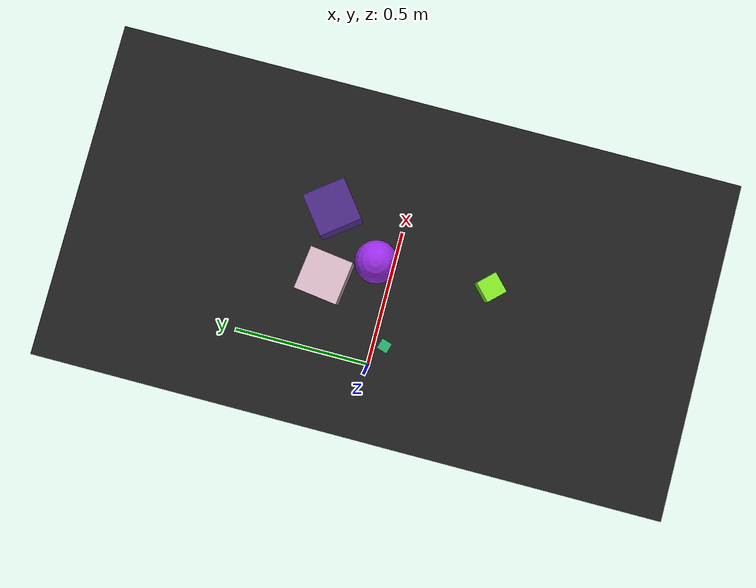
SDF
<?xml version="1.0" ?>
<sdf version="1.6">
  <world name="arm_world">
    <plugin filename="gz-sim-physics-system" name="gz::sim::systems::Physics">
      <engine>
        <filename>libgz-physics-bullet-featherstone-plugin.so</filename>
      </engine>
    </plugin>
    <plugin filename="gz-sim-user-commands-system" name="gz::sim::systems::UserCommands"/>
    <plugin filename="gz-sim-scene-broadcaster-system" name="gz::sim::systems::SceneBroadcaster"/>
    <plugin filename="gz-sim-sensors-system" name="gz::sim::systems::Sensors">
      <render_engine>ogre2</render_engine>
    </plugin>
    <gravity>0.0 0.0 -9.8</gravity>
    <scene>
      <shadows>false</shadows>
    </scene>
    <gui>
      <camera name="user_camera">
        <pose>0.75 -0.75 1.4 0 0.29 2.21</pose>
      </camera>
    </gui>
    <include>
      <uri>https://fuel.gazebosim.org/1.0/OpenRobotics/models/Sun</uri>
    </include>
    <model name="table">
      <static>true</static>
      <include>
        <uri>model://table</uri>
      </include>
      <pose>0.29 0 0 0 0 1.5708</pose>
    </model>
    <model name="ground_plane">
      <static>true</static>
      <link name="link">
        <collision name="collision">
          <geometry>
            <plane>
              <normal>0 0 1</normal>
            </plane>
          </geometry>
          <surface>
            <friction>
              <ode>
                <mu>1.0</mu>
                <mu2>1.0</mu2>
              </ode>
            </friction>
          </surface>
        </collision>
        <visual name="visual">
          <geometry>
            <plane>
              <normal>0 0 1</normal>
              <size>100 100</size>
            </plane>
          </geometry>
          <material>
            <ambient>0.8 0.8 0.8 1</ambient>
            <diffuse>0.8 0.8 0.8 1</diffuse>
            <specular>0.8 0.8 0.8 1</specular>
          </material>
        </visual>
      </link>
    </model>
    <model name="cube_m_0">
      <pose>0.307 -0.236 1.05 0 0 3.9</pose>
      <link name="cube_m_0_link">
        <collision name="cube_m_0_collision">
          <geometry>
            <box>
              <size>0.05 0.05 0.05</size>
            </box>
          </geometry>
        </collision>
        <visual name="cube_m_0_visual">
          <geometry>
            <box>
              <size>0.05 0.05 0.05</size>
            </box>
          </geometry>
          <material>
            <ambient>0.52 0.92 0.15 1</ambient>
            <diffuse>0.52 0.92 0.15 1</diffuse>
          </material>
        </visual>
        <velocity_decay>
          <linear>1</linear>
          <angular>1</angular>
        </velocity_decay>
      </link>
    </model>
    <model name="sphere_l_1">
      <pose>0.298 0.03 1.05 0 0 2.17</pose>
      <link name="sphere_l_1_link">
        <collision name="sphere_l_1_collision">
          <geometry>
            <sphere>
              <radius>0.05</radius>
            </sphere>
          </geometry>
        </collision>
        <visual name="sphere_l_1_visual">
          <geometry>
            <sphere>
              <radius>0.05</radius>
            </sphere>
          </geometry>
          <material>
            <ambient>0.6 0.17 0.9 1</ambient>
            <diffuse>0.6 0.17 0.9 1</diffuse>
          </material>
        </visual>
        <velocity_decay>
          <linear>1</linear>
          <angular>1</angular>
        </velocity_decay>
      </link>
    </model>
    <model name="cube_s_2">
      <pose>0.118 -0.037 1.05 0 0 5.99</pose>
      <link name="cube_s_2_link">
        <collision name="cube_s_2_collision">
          <geometry>
            <box>
              <size>0.025 0.025 0.025</size>
            </box>
          </geometry>
        </collision>
        <visual name="cube_s_2_visual">
          <geometry>
            <box>
              <size>0.025 0.025 0.025</size>
            </box>
          </geometry>
          <material>
            <ambient>0.16 0.67 0.43 1</ambient>
            <diffuse>0.16 0.67 0.43 1</diffuse>
          </material>
        </visual>
        <velocity_decay>
          <linear>1</linear>
          <angular>1</angular>
        </velocity_decay>
      </link>
    </model>
    <model name="cube_l_3">
      <pose>0.236 0.134 1.05 0 0 1.44</pose>
      <link name="cube_l_3_link">
        <collision name="cube_l_3_collision">
          <geometry>
            <box>
              <size>0.1 0.1 0.1</size>
            </box>
          </geometry>
        </collision>
        <visual name="cube_l_3_visual">
          <geometry>
            <box>
              <size>0.1 0.1 0.1</size>
            </box>
          </geometry>
          <material>
            <ambient>0.86 0.73 0.79 1</ambient>
            <diffuse>0.86 0.73 0.79 1</diffuse>
          </material>
        </visual>
        <velocity_decay>
          <linear>1</linear>
          <angular>1</angular>
        </velocity_decay>
      </link>
    </model>
    <model name="cube_l_4">
      <pose>0.388 0.155 1.05 0 0 0.66</pose>
      <link name="cube_l_4_link">
        <collision name="cube_l_4_collision">
          <geometry>
            <box>
              <size>0.1 0.1 0.1</size>
            </box>
          </geometry>
        </collision>
        <visual name="cube_l_4_visual">
          <geometry>
            <box>
              <size>0.1 0.1 0.1</size>
            </box>
          </geometry>
          <material>
            <ambient>0.3 0.16 0.53 1</ambient>
            <diffuse>0.3 0.16 0.53 1</diffuse>
          </material>
        </visual>
        <velocity_decay>
          <linear>1</linear>
          <angular>1</angular>
        </velocity_decay>
      </link>
    </model>
  </world>
</sdf>

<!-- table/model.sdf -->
<sdf version="1.5">
  <model name="table">
    <static>true</static>
    <link name="link">
      <collision name="surface">
        <pose>0 0 1.0 0 0 0</pose>
        <geometry>
          <box>
            <size>1.5 0.8 0.03</size>
          </box>
        </geometry>
        <surface>
          <friction>
            <ode>
              <mu>0.6</mu>
              <mu2>0.6</mu2>
            </ode>
          </friction>
        </surface>
      </collision>
      <visual name="surface">
        <pose>0 0 1.0 0 0 0</pose>
        <geometry>
          <box>
            <size>1.5 0.8 0.03</size>
          </box>
        </geometry>
        <material>
          <script>
            <uri>file://media/materials/scripts/gazebo.material</uri>
            <name>Gazebo/Black</name>
          </script>
        </material>
      </visual>
      <collision name="front_left_leg">
        <pose>0.68 0.38 0.5 0 0 0</pose>
        <geometry>
          <cylinder>
            <radius>0.02</radius>
            <length>1.0</length>
          </cylinder>
        </geometry>
      </collision>
      <visual name="front_left_leg">
        <pose>0.68 0.38 0.5 0 0 0</pose>
        <geometry>
          <cylinder>
            <radius>0.02</radius>
            <length>1.0</length>
          </cylinder>
        </geometry>
        <material>
          <script>
            <uri>file://media/materials/scripts/gazebo.material</uri>
            <name>Gazebo/Black</name>
          </script>
        </material>
      </visual>
      <collision name="front_right_leg">
        <pose>0.68 -0.38 0.5 0 0 0</pose>
        <geometry>
          <cylinder>
            <radius>0.02</radius>
            <length>1.0</length>
          </cylinder>
        </geometry>
      </collision>
      <visual name="front_right_leg">
        <pose>0.68 -0.38 0.5 0 0 0</pose>
        <geometry>
          <cylinder>
            <radius>0.02</radius>
            <length>1.0</length>
          </cylinder>
        </geometry>
        <material>
          <script>
            <uri>file://media/materials/scripts/gazebo.material</uri>
            <name>Gazebo/Black</name>
          </script>
        </material>
      </visual>
      <collision name="back_right_leg">
        <pose>-0.68 -0.38 0.5 0 0 0</pose>
        <geometry>
          <cylinder>
            <radius>0.02</radius>
            <length>1.0</length>
          </cylinder>
        </geometry>
      </collision>
      <visual name="back_right_leg">
        <pose>-0.68 -0.38 0.5 0 0 0</pose>
        <geometry>
          <cylinder>
            <radius>0.02</radius>
            <length>1.0</length>
          </cylinder>
        </geometry>
        <material>
          <script>
            <uri>file://media/materials/scripts/gazebo.material</uri>
            <name>Gazebo/Black</name>
          </script>
        </material>
      </visual>
      <collision name="back_left_leg">
        <pose>-0.68 0.38 0.5 0 0 0</pose>
        <geometry>
          <cylinder>
            <radius>0.02</radius>
            <length>1.0</length>
          </cylinder>
        </geometry>
      </collision>
      <visual name="back_left_leg">
        <pose>-0.68 0.38 0.5 0 0 0</pose>
        <geometry>
          <cylinder>
            <radius>0.02</radius>
            <length>1.0</length>
          </cylinder>
        </geometry>
        <material>
          <script>
            <uri>file://media/materials/scripts/gazebo.material</uri>
            <name>Gazebo/Black</name>
          </script>
        </material>
      </visual>
    </link>
  </model>
</sdf>
